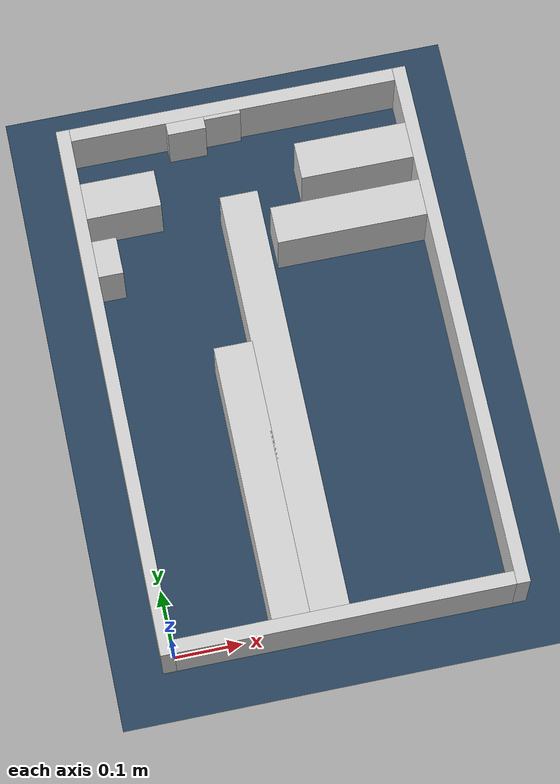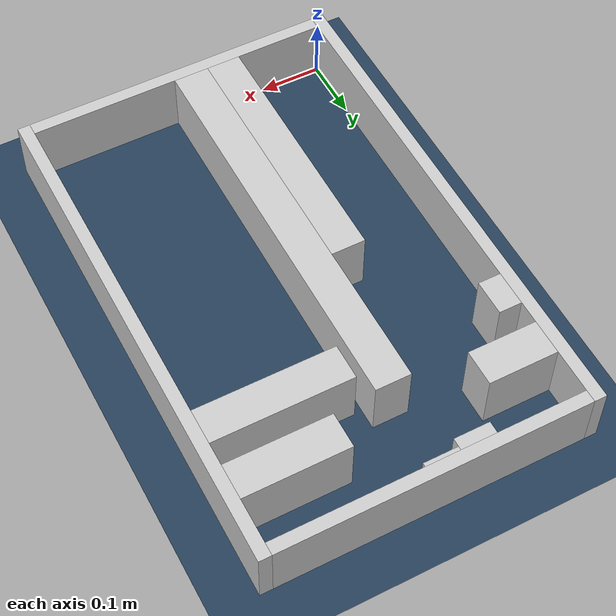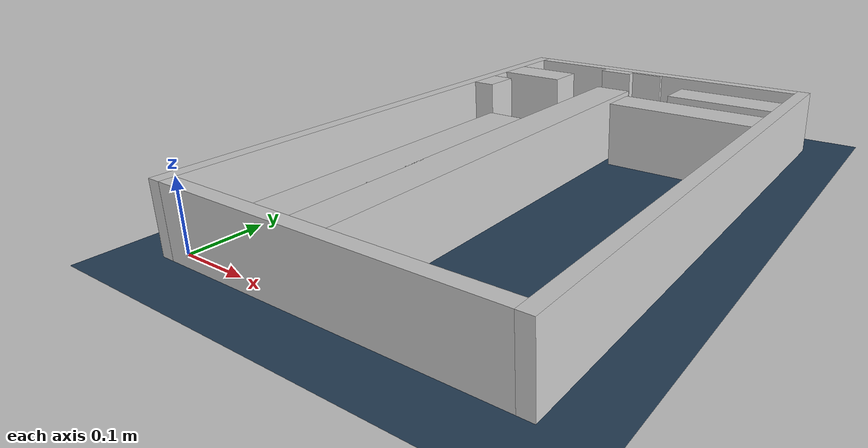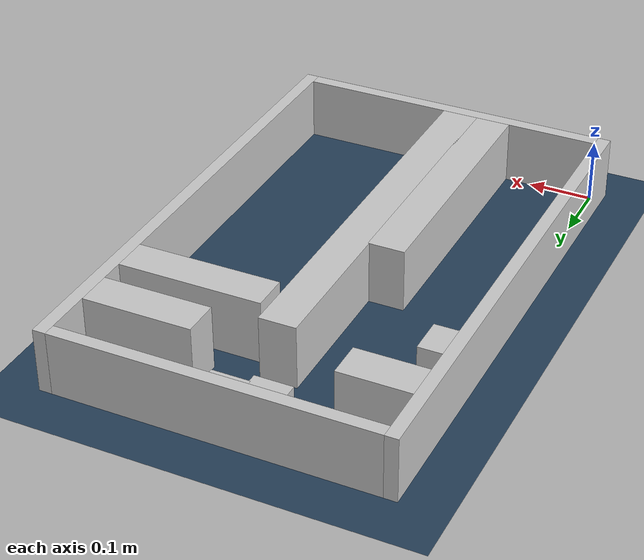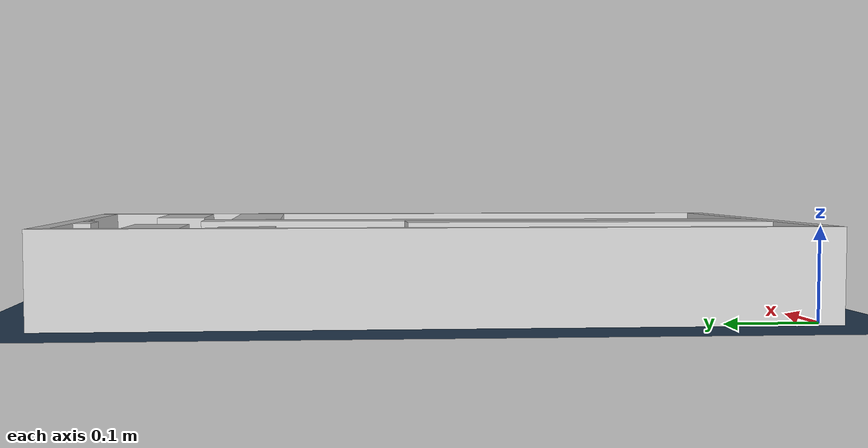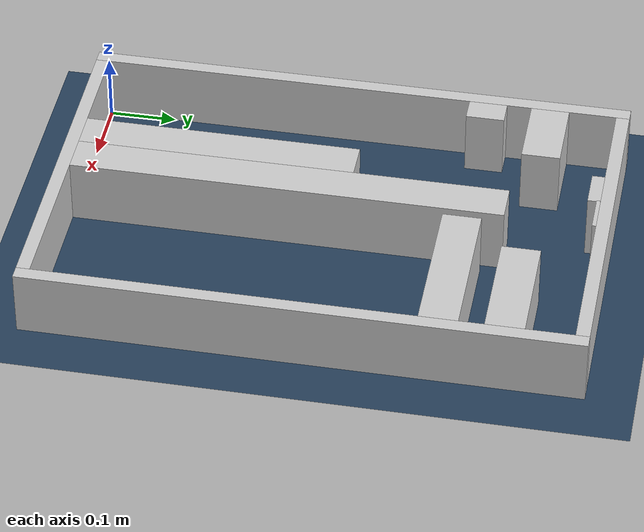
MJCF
<?xml version="1.0" ?>
<mujoco model="generated_real_template">
  <compiler angle="degree"/>
  <option timestep="0.002" integrator="implicitfast" iterations="100" cone="elliptic"/>
  <default>
    <geom density="1"/>
  </default>
  <asset>
    <texture builtin="gradient" height="3072" rgb1="0.3 0.5 0.7" rgb2="0 0 0" type="skybox" width="512"/>
    <texture builtin="checker" height="300" mark="edge" markrgb="0.8 0.8 0.8" name="groundplane" rgb1="0.2 0.3 0.4" rgb2="0.1 0.2 0.3" type="2d" width="300"/>
    <material name="groundplane" reflectance="0.2" texrepeat="5 5" texture="groundplane" texuniform="true"/>
  </asset>
  <worldbody>
    <light dir="0 0 -1" directional="true" pos="0 0 1.5"/>
    <geom name="floor" type="plane" condim="4" friction="0.5 0.005 0.001" material="groundplane" size="0 0 0.05"/>
    <body name="walls">
      <geom name="wall_boundary_left" type="box" condim="4" friction="1.0 0.005 0.0001" rgba="0.8 0.8 0.8 1" pos="-0.010000 0.387500 0.050000" euler="0 0 0.000000" size="0.010000 0.407500 0.050000"/>
      <geom name="wall_boundary_right" type="box" condim="4" friction="1.0 0.005 0.0001" rgba="0.8 0.8 0.8 1" pos="0.500000 0.387500 0.050000" euler="0 0 0.000000" size="0.010000 0.407500 0.050000"/>
      <geom name="wall_boundary_bottom" type="box" condim="4" friction="1.0 0.005 0.0001" rgba="0.8 0.8 0.8 1" pos="0.245000 -0.010000 0.050000" euler="0 0 0.000000" size="0.245000 0.010000 0.050000"/>
      <geom name="wall_boundary_top" type="box" condim="4" friction="1.0 0.005 0.0001" rgba="0.8 0.8 0.8 1" pos="0.245000 0.785000 0.050000" euler="0 0 0.000000" size="0.245000 0.010000 0.050000"/>
      <geom name="wall_inner_1_1" type="box" condim="4" friction="1.0 0.005 0.0001" rgba="0.8 0.8 0.8 1" pos="0.225447 0.321113 0.050000" euler="0 0 90.000000" size="0.321113 0.028500 0.050000"/>
      <geom name="wall_inner_1_2" type="box" condim="4" friction="1.0 0.005 0.0001" rgba="0.8 0.8 0.8 1" pos="0.225447 0.772081 0.050000" euler="0 0 90.000000" size="0.002919 0.028500 0.050000"/>
      <geom name="wall_inner_2_1" type="box" condim="4" friction="1.0 0.005 0.0001" rgba="0.8 0.8 0.8 1" pos="0.055420 0.676339 0.050000" euler="0 0 0.000000" size="0.055420 0.028500 0.050000"/>
      <geom name="wall_inner_2_2" type="box" condim="4" friction="1.0 0.005 0.0001" rgba="0.8 0.8 0.8 1" pos="0.405828 0.676339 0.050000" euler="0 0 0.000000" size="0.084172 0.028500 0.050000"/>
      <geom name="wall_inner_3_1" type="box" condim="4" friction="1.0 0.005 0.0001" rgba="0.8 0.8 0.8 1" pos="0.170479 0.206180 0.050000" euler="0 0 90.000000" size="0.206180 0.028500 0.050000"/>
      <geom name="wall_inner_3_2" type="box" condim="4" friction="1.0 0.005 0.0001" rgba="0.8 0.8 0.8 1" pos="0.170479 0.765575 0.050000" euler="0 0 90.000000" size="0.009425 0.028500 0.050000"/>
      <geom name="wall_inner_4_1" type="box" condim="4" friction="1.0 0.005 0.0001" rgba="0.8 0.8 0.8 1" pos="0.018319 0.582921 0.050000" euler="0 0 0.000000" size="0.018319 0.028500 0.050000"/>
      <geom name="wall_inner_4_2" type="box" condim="4" friction="1.0 0.005 0.0001" rgba="0.8 0.8 0.8 1" pos="0.378199 0.582921 0.050000" euler="0 0 0.000000" size="0.111801 0.028500 0.050000"/>
    </body>
  </worldbody>
</mujoco>
